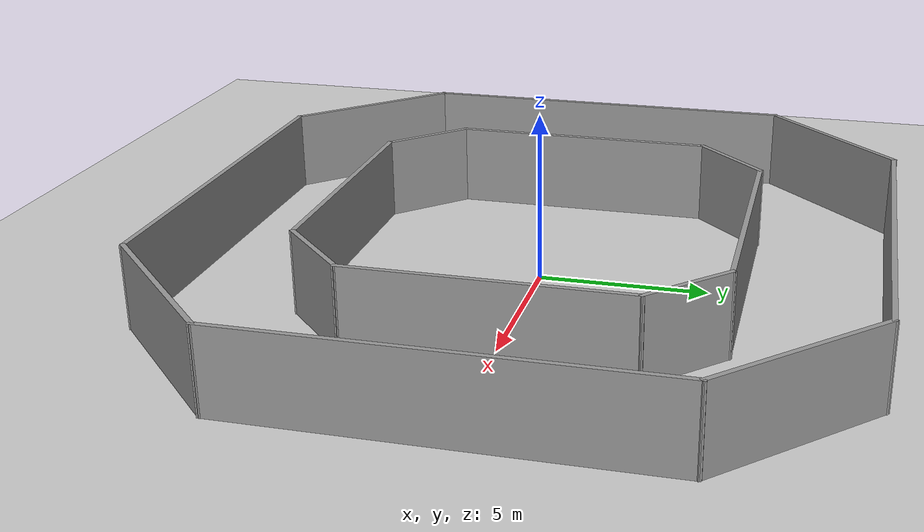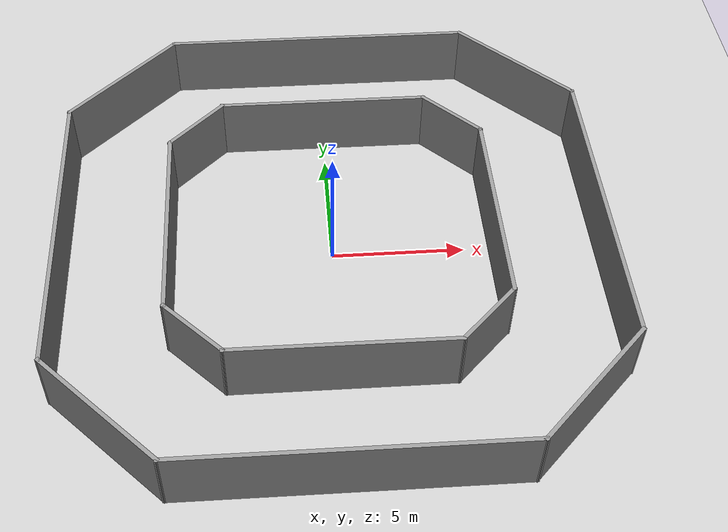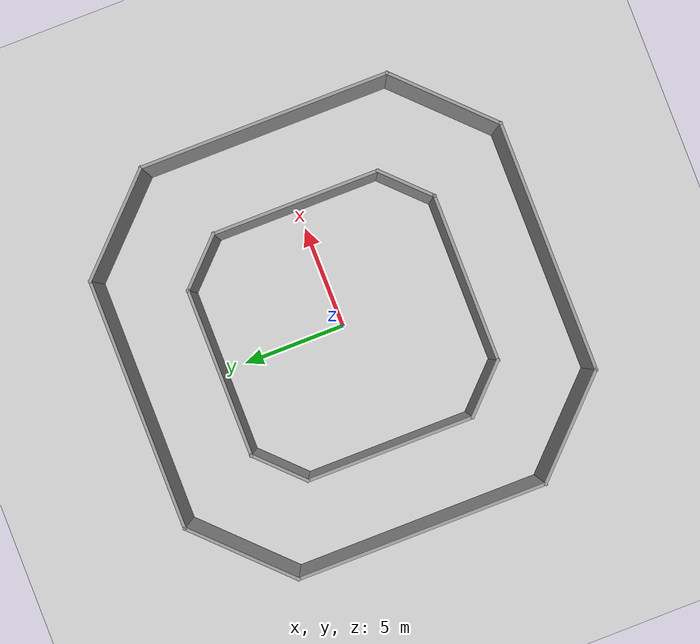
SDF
<sdf version="1.6">
 <world name="default">
  <light name="sun" type="directional">
   <pose>0 0 10 0 -0 0</pose>
   <diffuse>0.8 0.8 0.8 1</diffuse>
   <specular>0.1 0.1 0.1 1</specular>
   <attenuation>
    <range>1000</range>
    <constant>0.9</constant>
    <linear>0.01</linear>
    <quadratic>0.001</quadratic>
   </attenuation>
   <direction>-0.5 0.5 -1</direction>
  </light>
  <model name="ground_plane">
   <static>1</static>
   <link name="link">
    <collision name="collision">
     <geometry><plane><normal>0 0 1</normal><size>100 100</size></plane></geometry>
     <surface><friction><ode><mu>100</mu><mu2>50</mu2></ode></friction></surface>
    </collision>
    <visual name="visual">
     <cast_shadows>0</cast_shadows>
     <geometry><plane><normal>0 0 1</normal><size>100 100</size></plane></geometry>
     <material>
      <script><uri>file://media/materials/scripts/gazebo.material</uri><name>Gazebo/Grey</name></script>
     </material>
    </visual>
   </link>
  </model>
  <gravity>0 0 -9.8</gravity>
  <magnetic_field>6e-06 2.3e-05 -4.2e-05</magnetic_field>
  <atmosphere type="adiabatic"/>
  <physics name="default_physics" default="0" type="ode">
   <max_step_size>0.001</max_step_size>
   <real_time_factor>100</real_time_factor>
   <real_time_update_rate>0</real_time_update_rate>
  </physics>
  <scene><ambient>0.4 0.4 0.4 1</ambient><background>0.7 0.7 0.7 1</background><shadows>1</shadows></scene>
  <spherical_coordinates>
   <surface_model>EARTH_WGS84</surface_model>
   <latitude_deg>0</latitude_deg>
   <longitude_deg>0</longitude_deg>
   <elevation>0</elevation>
   <heading_deg>0</heading_deg>
  </spherical_coordinates>
  <model name="octa">
   <link name="Wall_11">
    <collision name="Wall_11_Collision">
     <geometry><box><size>12.15 0.15 2.5</size></box></geometry>
     <pose>0 0 1.25 0 -0 0</pose>
    </collision>
    <visual name="Wall_11_Visual">
     <pose>0 0 1.25 0 -0 0</pose>
     <geometry><box><size>12.15 0.15 2.5</size></box></geometry>
     <material>
      <script><uri>file://media/materials/scripts/gazebo.material</uri><name>Gazebo/Grey</name></script>
      <ambient>1 1 1 1</ambient>
     </material>
     <meta><layer>0</layer></meta>
    </visual>
    <pose>0 -10 0 0 -0 0</pose>
   </link>
   <link name="Wall_12">
    <collision name="Wall_12_Collision">
     <geometry><box><size>5.80685 0.15 2.5</size></box></geometry>
     <pose>0 0 1.25 0 -0 0</pose>
    </collision>
    <visual name="Wall_12_Visual">
     <pose>0 0 1.25 0 -0 0</pose>
     <geometry><box><size>5.80685 0.15 2.5</size></box></geometry>
     <material>
      <script><uri>file://media/materials/scripts/gazebo.material</uri><name>Gazebo/Grey</name></script>
      <ambient>1 1 1 1</ambient>
     </material>
     <meta><layer>0</layer></meta>
    </visual>
    <pose>8 -8 0 0 -0 0.785398</pose>
   </link>
   <link name="Wall_13">
    <collision name="Wall_13_Collision">
     <geometry><box><size>12.15 0.15 2.5</size></box></geometry>
     <pose>0 0 1.25 0 -0 0</pose>
    </collision>
    <visual name="Wall_13_Visual">
     <pose>0 0 1.25 0 -0 0</pose>
     <geometry><box><size>12.15 0.15 2.5</size></box></geometry>
     <material>
      <script><uri>file://media/materials/scripts/gazebo.material</uri><name>Gazebo/Grey</name></script>
      <ambient>1 1 1 1</ambient>
     </material>
     <meta><layer>0</layer></meta>
    </visual>
    <pose>10 0 0 0 -0 1.5708</pose>
   </link>
   <link name="Wall_14">
    <collision name="Wall_14_Collision">
     <geometry><box><size>5.80685 0.15 2.5</size></box></geometry>
     <pose>0 0 1.25 0 -0 0</pose>
    </collision>
    <visual name="Wall_14_Visual">
     <pose>0 0 1.25 0 -0 0</pose>
     <geometry><box><size>5.80685 0.15 2.5</size></box></geometry>
     <material>
      <script><uri>file://media/materials/scripts/gazebo.material</uri><name>Gazebo/Grey</name></script>
      <ambient>1 1 1 1</ambient>
     </material>
     <meta><layer>0</layer></meta>
    </visual>
    <pose>8 8 0 0 -0 2.35619</pose>
   </link>
   <link name="Wall_15">
    <collision name="Wall_15_Collision">
     <geometry><box><size>12.15 0.15 2.5</size></box></geometry>
     <pose>0 0 1.25 0 -0 0</pose>
    </collision>
    <visual name="Wall_15_Visual">
     <pose>0 0 1.25 0 -0 0</pose>
     <geometry><box><size>12.15 0.15 2.5</size></box></geometry>
     <material>
      <script><uri>file://media/materials/scripts/gazebo.material</uri><name>Gazebo/Grey</name></script>
      <ambient>1 1 1 1</ambient>
     </material>
     <meta><layer>0</layer></meta>
    </visual>
    <pose>0 10 0 0 -0 3.14159</pose>
   </link>
   <link name="Wall_16">
    <collision name="Wall_16_Collision">
     <geometry><box><size>5.80685 0.15 2.5</size></box></geometry>
     <pose>0 0 1.25 0 -0 0</pose>
    </collision>
    <visual name="Wall_16_Visual">
     <pose>0 0 1.25 0 -0 0</pose>
     <geometry><box><size>5.80685 0.15 2.5</size></box></geometry>
     <material>
      <script><uri>file://media/materials/scripts/gazebo.material</uri><name>Gazebo/Grey</name></script>
      <ambient>1 1 1 1</ambient>
     </material>
     <meta><layer>0</layer></meta>
    </visual>
    <pose>-8 8 0 0 0 -2.35619</pose>
   </link>
   <link name="Wall_17">
    <collision name="Wall_17_Collision">
     <geometry><box><size>12.15 0.15 2.5</size></box></geometry>
     <pose>0 0 1.25 0 -0 0</pose>
    </collision>
    <visual name="Wall_17_Visual">
     <pose>0 0 1.25 0 -0 0</pose>
     <geometry><box><size>12.15 0.15 2.5</size></box></geometry>
     <material>
      <script><uri>file://media/materials/scripts/gazebo.material</uri><name>Gazebo/Grey</name></script>
      <ambient>1 1 1 1</ambient>
     </material>
     <meta><layer>0</layer></meta>
    </visual>
    <pose>-10 0 0 0 0 -1.5708</pose>
   </link>
   <link name="Wall_18">
    <collision name="Wall_18_Collision">
     <geometry><box><size>5.80685 0.15 2.5</size></box></geometry>
     <pose>0 0 1.25 0 -0 0</pose>
    </collision>
    <visual name="Wall_18_Visual">
     <pose>0 0 1.25 0 -0 0</pose>
     <geometry><box><size>5.80685 0.15 2.5</size></box></geometry>
     <material>
      <script><uri>file://media/materials/scripts/gazebo.material</uri><name>Gazebo/Grey</name></script>
      <ambient>1 1 1 1</ambient>
     </material>
     <meta><layer>0</layer></meta>
    </visual>
    <pose>-8 -8 0 0 0 -0.785398</pose>
   </link>
   <link name="Wall_2">
    <collision name="Wall_2_Collision">
     <geometry><box><size>8.15 0.15 2.5</size></box></geometry>
     <pose>0 0 1.25 0 -0 0</pose>
    </collision>
    <visual name="Wall_2_Visual">
     <pose>0 0 1.25 0 -0 0</pose>
     <geometry><box><size>8.15 0.15 2.5</size></box></geometry>
     <material>
      <script><uri>file://media/materials/scripts/gazebo.material</uri><name>Gazebo/Grey</name></script>
      <ambient>1 1 1 1</ambient>
     </material>
     <meta><layer>0</layer></meta>
    </visual>
    <pose>0 -6 0 0 -0 0</pose>
   </link>
   <link name="Wall_3">
    <collision name="Wall_3_Collision">
     <geometry><box><size>2.97843 0.15 2.5</size></box></geometry>
     <pose>0 0 1.25 0 -0 0</pose>
    </collision>
    <visual name="Wall_3_Visual">
     <pose>0 0 1.25 0 -0 0</pose>
     <geometry><box><size>2.97843 0.15 2.5</size></box></geometry>
     <material>
      <script><uri>file://media/materials/scripts/gazebo.material</uri><name>Gazebo/Grey</name></script>
      <ambient>1 1 1 1</ambient>
     </material>
     <meta><layer>0</layer></meta>
    </visual>
    <pose>5 -5 0 0 -0 0.785398</pose>
   </link>
   <link name="Wall_4">
    <collision name="Wall_4_Collision">
     <geometry><box><size>8.15 0.15 2.5</size></box></geometry>
     <pose>0 0 1.25 0 -0 0</pose>
    </collision>
    <visual name="Wall_4_Visual">
     <pose>0 0 1.25 0 -0 0</pose>
     <geometry><box><size>8.15 0.15 2.5</size></box></geometry>
     <material>
      <script><uri>file://media/materials/scripts/gazebo.material</uri><name>Gazebo/Grey</name></script>
      <ambient>1 1 1 1</ambient>
     </material>
     <meta><layer>0</layer></meta>
    </visual>
    <pose>6 0 0 0 -0 1.5708</pose>
   </link>
   <link name="Wall_5">
    <collision name="Wall_5_Collision">
     <geometry><box><size>2.97843 0.15 2.5</size></box></geometry>
     <pose>0 0 1.25 0 -0 0</pose>
    </collision>
    <visual name="Wall_5_Visual">
     <pose>0 0 1.25 0 -0 0</pose>
     <geometry><box><size>2.97843 0.15 2.5</size></box></geometry>
     <material>
      <script><uri>file://media/materials/scripts/gazebo.material</uri><name>Gazebo/Grey</name></script>
      <ambient>1 1 1 1</ambient>
     </material>
     <meta><layer>0</layer></meta>
    </visual>
    <pose>5 5 0 0 -0 2.35619</pose>
   </link>
   <link name="Wall_6">
    <collision name="Wall_6_Collision">
     <geometry><box><size>8.15 0.15 2.5</size></box></geometry>
     <pose>0 0 1.25 0 -0 0</pose>
    </collision>
    <visual name="Wall_6_Visual">
     <pose>0 0 1.25 0 -0 0</pose>
     <geometry><box><size>8.15 0.15 2.5</size></box></geometry>
     <material>
      <script><uri>file://media/materials/scripts/gazebo.material</uri><name>Gazebo/Grey</name></script>
      <ambient>1 1 1 1</ambient>
     </material>
     <meta><layer>0</layer></meta>
    </visual>
    <pose>0 6 0 0 -0 3.14159</pose>
   </link>
   <link name="Wall_7">
    <collision name="Wall_7_Collision">
     <geometry><box><size>2.97843 0.15 2.5</size></box></geometry>
     <pose>0 0 1.25 0 -0 0</pose>
    </collision>
    <visual name="Wall_7_Visual">
     <pose>0 0 1.25 0 -0 0</pose>
     <geometry><box><size>2.97843 0.15 2.5</size></box></geometry>
     <material>
      <script><uri>file://media/materials/scripts/gazebo.material</uri><name>Gazebo/Grey</name></script>
      <ambient>1 1 1 1</ambient>
     </material>
     <meta><layer>0</layer></meta>
    </visual>
    <pose>-5 5 0 0 0 -2.35619</pose>
   </link>
   <link name="Wall_8">
    <collision name="Wall_8_Collision">
     <geometry><box><size>8.15 0.15 2.5</size></box></geometry>
     <pose>0 0 1.25 0 -0 0</pose>
    </collision>
    <visual name="Wall_8_Visual">
     <pose>0 0 1.25 0 -0 0</pose>
     <geometry><box><size>8.15 0.15 2.5</size></box></geometry>
     <material>
      <script><uri>file://media/materials/scripts/gazebo.material</uri><name>Gazebo/Grey</name></script>
      <ambient>1 1 1 1</ambient>
     </material>
     <meta><layer>0</layer></meta>
    </visual>
    <pose>-6 0 0 0 0 -1.5708</pose>
   </link>
   <link name="Wall_9">
    <collision name="Wall_9_Collision">
     <geometry><box><size>2.97843 0.15 2.5</size></box></geometry>
     <pose>0 0 1.25 0 -0 0</pose>
    </collision>
    <visual name="Wall_9_Visual">
     <pose>0 0 1.25 0 -0 0</pose>
     <geometry><box><size>2.97843 0.15 2.5</size></box></geometry>
     <material>
      <script><uri>file://media/materials/scripts/gazebo.material</uri><name>Gazebo/Grey</name></script>
      <ambient>1 1 1 1</ambient>
     </material>
     <meta><layer>0</layer></meta>
    </visual>
    <pose>-5 -5 0 0 0 -0.785398</pose>
   </link>
   <static>1</static>
  </model>
 </world>
</sdf>
